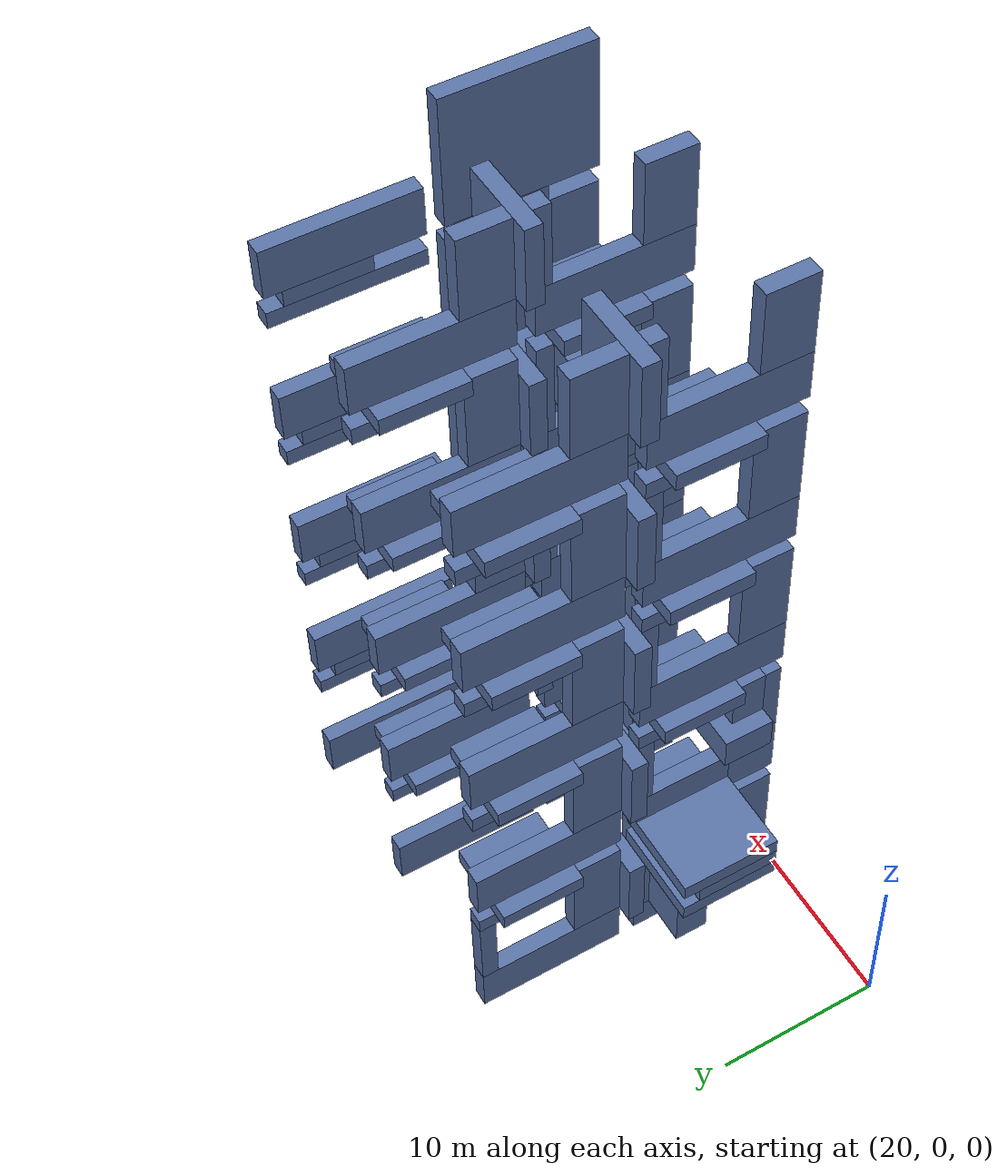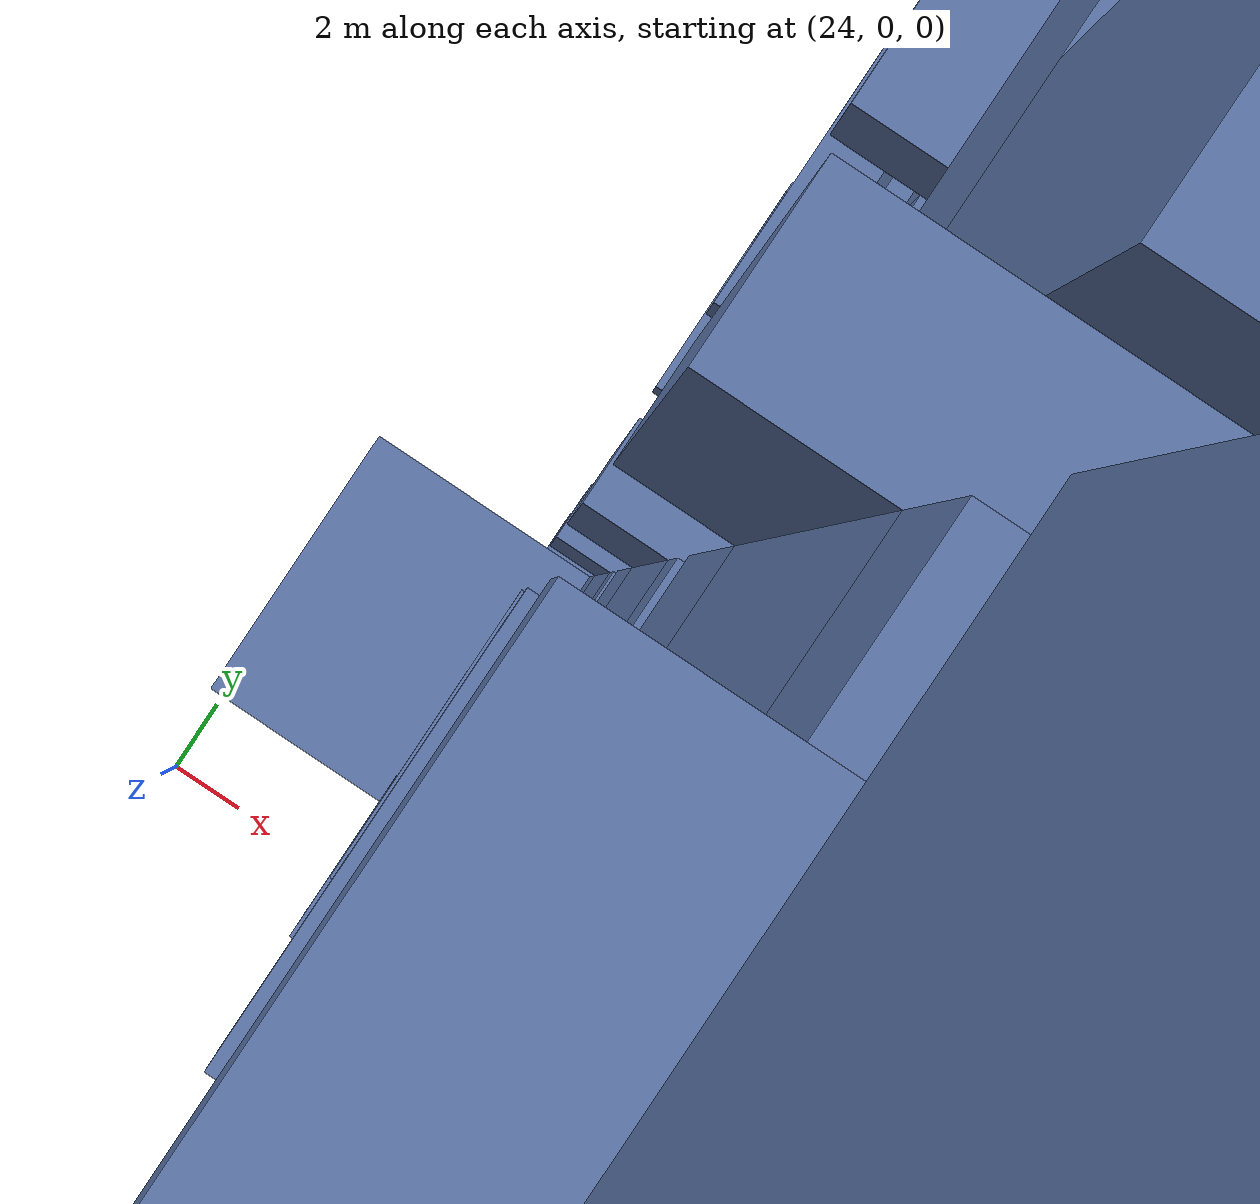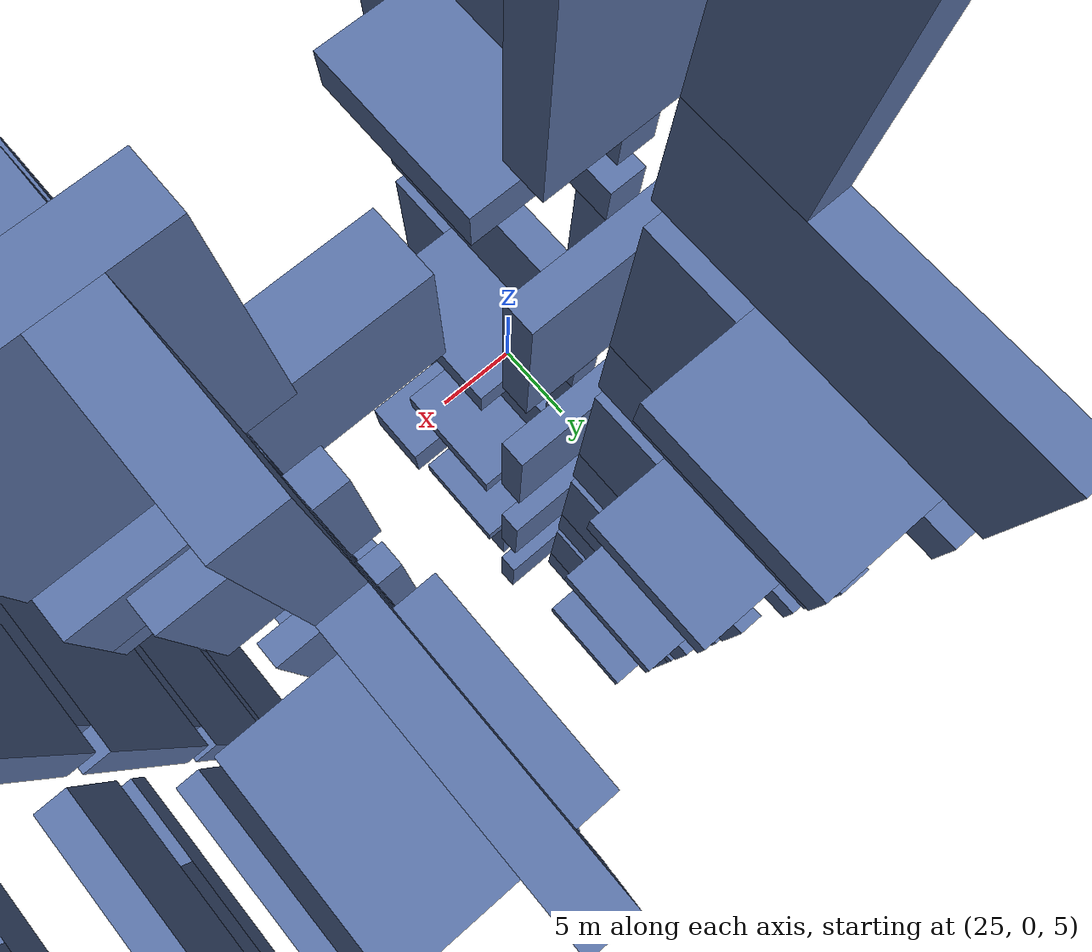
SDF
<sdf version="1.7">
 <world name="default">
  <model name="racer_env">
   <static>1</static>
   <link name="b386">
    <pose>28.000 7.000 9.500 0 0 0</pose>
    <collision name="c"><geometry><box><size>6.000 6.000 1.000</size></box></geometry></collision>
    <visual name="v">
     <geometry><box><size>6.000 6.000 1.000</size></box></geometry>
     <material><ambient>0.30 0.38 0.55 1</ambient><diffuse>0.35 0.45 0.65 1</diffuse></material>
    </visual>
   </link>
   <link name="b387">
    <pose>29.500 6.500 10.500 0 0 0</pose>
    <collision name="c"><geometry><box><size>9.000 5.000 1.000</size></box></geometry></collision>
    <visual name="v">
     <geometry><box><size>9.000 5.000 1.000</size></box></geometry>
     <material><ambient>0.30 0.38 0.55 1</ambient><diffuse>0.35 0.45 0.65 1</diffuse></material>
    </visual>
   </link>
   <link name="b388">
    <pose>28.000 7.000 11.500 0 0 0</pose>
    <collision name="c"><geometry><box><size>6.000 6.000 1.000</size></box></geometry></collision>
    <visual name="v">
     <geometry><box><size>6.000 6.000 1.000</size></box></geometry>
     <material><ambient>0.30 0.38 0.55 1</ambient><diffuse>0.35 0.45 0.65 1</diffuse></material>
    </visual>
   </link>
   <link name="b389">
    <pose>30.000 8.000 6.000 0 0 0</pose>
    <collision name="c"><geometry><box><size>6.000 2.000 6.000</size></box></geometry></collision>
    <visual name="v">
     <geometry><box><size>6.000 2.000 6.000</size></box></geometry>
     <material><ambient>0.30 0.38 0.55 1</ambient><diffuse>0.35 0.45 0.65 1</diffuse></material>
    </visual>
   </link>
   <link name="b392">
    <pose>32.000 3.500 16.000 0 0 0</pose>
    <collision name="c"><geometry><box><size>6.000 3.000 2.000</size></box></geometry></collision>
    <visual name="v">
     <geometry><box><size>6.000 3.000 2.000</size></box></geometry>
     <material><ambient>0.30 0.38 0.55 1</ambient><diffuse>0.35 0.45 0.65 1</diffuse></material>
    </visual>
   </link>
   <link name="b393">
    <pose>31.500 6.500 20.500 0 0 0</pose>
    <collision name="c"><geometry><box><size>5.000 5.000 1.000</size></box></geometry></collision>
    <visual name="v">
     <geometry><box><size>5.000 5.000 1.000</size></box></geometry>
     <material><ambient>0.30 0.38 0.55 1</ambient><diffuse>0.35 0.45 0.65 1</diffuse></material>
    </visual>
   </link>
   <link name="b394">
    <pose>31.500 6.500 30.500 0 0 0</pose>
    <collision name="c"><geometry><box><size>5.000 5.000 1.000</size></box></geometry></collision>
    <visual name="v">
     <geometry><box><size>5.000 5.000 1.000</size></box></geometry>
     <material><ambient>0.30 0.38 0.55 1</ambient><diffuse>0.35 0.45 0.65 1</diffuse></material>
    </visual>
   </link>
   <link name="b395">
    <pose>31.500 6.500 40.500 0 0 0</pose>
    <collision name="c"><geometry><box><size>5.000 5.000 1.000</size></box></geometry></collision>
    <visual name="v">
     <geometry><box><size>5.000 5.000 1.000</size></box></geometry>
     <material><ambient>0.30 0.38 0.55 1</ambient><diffuse>0.35 0.45 0.65 1</diffuse></material>
    </visual>
   </link>
   <link name="b396">
    <pose>31.500 10.500 6.500 0 0 0</pose>
    <collision name="c"><geometry><box><size>5.000 1.000 5.000</size></box></geometry></collision>
    <visual name="v">
     <geometry><box><size>5.000 1.000 5.000</size></box></geometry>
     <material><ambient>0.30 0.38 0.55 1</ambient><diffuse>0.35 0.45 0.65 1</diffuse></material>
    </visual>
   </link>
   <link name="b397">
    <pose>31.500 10.500 16.500 0 0 0</pose>
    <collision name="c"><geometry><box><size>5.000 1.000 5.000</size></box></geometry></collision>
    <visual name="v">
     <geometry><box><size>5.000 1.000 5.000</size></box></geometry>
     <material><ambient>0.30 0.38 0.55 1</ambient><diffuse>0.35 0.45 0.65 1</diffuse></material>
    </visual>
   </link>
   <link name="b398">
    <pose>31.500 10.500 26.500 0 0 0</pose>
    <collision name="c"><geometry><box><size>5.000 1.000 5.000</size></box></geometry></collision>
    <visual name="v">
     <geometry><box><size>5.000 1.000 5.000</size></box></geometry>
     <material><ambient>0.30 0.38 0.55 1</ambient><diffuse>0.35 0.45 0.65 1</diffuse></material>
    </visual>
   </link>
   <link name="b399">
    <pose>31.500 10.500 36.500 0 0 0</pose>
    <collision name="c"><geometry><box><size>5.000 1.000 5.000</size></box></geometry></collision>
    <visual name="v">
     <geometry><box><size>5.000 1.000 5.000</size></box></geometry>
     <material><ambient>0.30 0.38 0.55 1</ambient><diffuse>0.35 0.45 0.65 1</diffuse></material>
    </visual>
   </link>
   <link name="b400">
    <pose>31.500 10.500 46.500 0 0 0</pose>
    <collision name="c"><geometry><box><size>5.000 1.000 5.000</size></box></geometry></collision>
    <visual name="v">
     <geometry><box><size>5.000 1.000 5.000</size></box></geometry>
     <material><ambient>0.30 0.38 0.55 1</ambient><diffuse>0.35 0.45 0.65 1</diffuse></material>
    </visual>
   </link>
   <link name="b401">
    <pose>31.500 16.500 10.500 0 0 0</pose>
    <collision name="c"><geometry><box><size>5.000 5.000 1.000</size></box></geometry></collision>
    <visual name="v">
     <geometry><box><size>5.000 5.000 1.000</size></box></geometry>
     <material><ambient>0.30 0.38 0.55 1</ambient><diffuse>0.35 0.45 0.65 1</diffuse></material>
    </visual>
   </link>
   <link name="b402">
    <pose>31.500 16.500 20.500 0 0 0</pose>
    <collision name="c"><geometry><box><size>5.000 5.000 1.000</size></box></geometry></collision>
    <visual name="v">
     <geometry><box><size>5.000 5.000 1.000</size></box></geometry>
     <material><ambient>0.30 0.38 0.55 1</ambient><diffuse>0.35 0.45 0.65 1</diffuse></material>
    </visual>
   </link>
   <link name="b403">
    <pose>31.500 16.500 30.500 0 0 0</pose>
    <collision name="c"><geometry><box><size>5.000 5.000 1.000</size></box></geometry></collision>
    <visual name="v">
     <geometry><box><size>5.000 5.000 1.000</size></box></geometry>
     <material><ambient>0.30 0.38 0.55 1</ambient><diffuse>0.35 0.45 0.65 1</diffuse></material>
    </visual>
   </link>
   <link name="b404">
    <pose>31.500 16.500 40.500 0 0 0</pose>
    <collision name="c"><geometry><box><size>5.000 5.000 1.000</size></box></geometry></collision>
    <visual name="v">
     <geometry><box><size>5.000 5.000 1.000</size></box></geometry>
     <material><ambient>0.30 0.38 0.55 1</ambient><diffuse>0.35 0.45 0.65 1</diffuse></material>
    </visual>
   </link>
   <link name="b432">
    <pose>30.500 5.500 2.000 0 0 0</pose>
    <collision name="c"><geometry><box><size>1.000 9.000 2.000</size></box></geometry></collision>
    <visual name="v">
     <geometry><box><size>1.000 9.000 2.000</size></box></geometry>
     <material><ambient>0.30 0.38 0.55 1</ambient><diffuse>0.35 0.45 0.65 1</diffuse></material>
    </visual>
   </link>
   <link name="b433">
    <pose>30.500 4.000 3.500 0 0 0</pose>
    <collision name="c"><geometry><box><size>1.000 6.000 1.000</size></box></geometry></collision>
    <visual name="v">
     <geometry><box><size>1.000 6.000 1.000</size></box></geometry>
     <material><ambient>0.30 0.38 0.55 1</ambient><diffuse>0.35 0.45 0.65 1</diffuse></material>
    </visual>
   </link>
   <link name="b434">
    <pose>30.500 2.500 7.000 0 0 0</pose>
    <collision name="c"><geometry><box><size>1.000 3.000 6.000</size></box></geometry></collision>
    <visual name="v">
     <geometry><box><size>1.000 3.000 6.000</size></box></geometry>
     <material><ambient>0.30 0.38 0.55 1</ambient><diffuse>0.35 0.45 0.65 1</diffuse></material>
    </visual>
   </link>
   <link name="b435">
    <pose>30.500 2.500 13.000 0 0 0</pose>
    <collision name="c"><geometry><box><size>1.000 3.000 4.000</size></box></geometry></collision>
    <visual name="v">
     <geometry><box><size>1.000 3.000 4.000</size></box></geometry>
     <material><ambient>0.30 0.38 0.55 1</ambient><diffuse>0.35 0.45 0.65 1</diffuse></material>
    </visual>
   </link>
   <link name="b436">
    <pose>30.500 1.500 17.500 0 0 0</pose>
    <collision name="c"><geometry><box><size>1.000 1.000 5.000</size></box></geometry></collision>
    <visual name="v">
     <geometry><box><size>1.000 1.000 5.000</size></box></geometry>
     <material><ambient>0.30 0.38 0.55 1</ambient><diffuse>0.35 0.45 0.65 1</diffuse></material>
    </visual>
   </link>
   <link name="b437">
    <pose>30.500 5.500 22.500 0 0 0</pose>
    <collision name="c"><geometry><box><size>1.000 9.000 3.000</size></box></geometry></collision>
    <visual name="v">
     <geometry><box><size>1.000 9.000 3.000</size></box></geometry>
     <material><ambient>0.30 0.38 0.55 1</ambient><diffuse>0.35 0.45 0.65 1</diffuse></material>
    </visual>
   </link>
   <link name="b438">
    <pose>30.500 2.500 27.000 0 0 0</pose>
    <collision name="c"><geometry><box><size>1.000 3.000 6.000</size></box></geometry></collision>
    <visual name="v">
     <geometry><box><size>1.000 3.000 6.000</size></box></geometry>
     <material><ambient>0.30 0.38 0.55 1</ambient><diffuse>0.35 0.45 0.65 1</diffuse></material>
    </visual>
   </link>
   <link name="b439">
    <pose>30.500 5.500 32.500 0 0 0</pose>
    <collision name="c"><geometry><box><size>1.000 9.000 3.000</size></box></geometry></collision>
    <visual name="v">
     <geometry><box><size>1.000 9.000 3.000</size></box></geometry>
     <material><ambient>0.30 0.38 0.55 1</ambient><diffuse>0.35 0.45 0.65 1</diffuse></material>
    </visual>
   </link>
   <link name="b440">
    <pose>30.500 2.500 37.000 0 0 0</pose>
    <collision name="c"><geometry><box><size>1.000 3.000 6.000</size></box></geometry></collision>
    <visual name="v">
     <geometry><box><size>1.000 3.000 6.000</size></box></geometry>
     <material><ambient>0.30 0.38 0.55 1</ambient><diffuse>0.35 0.45 0.65 1</diffuse></material>
    </visual>
   </link>
   <link name="b441">
    <pose>30.500 5.500 42.500 0 0 0</pose>
    <collision name="c"><geometry><box><size>1.000 9.000 3.000</size></box></geometry></collision>
    <visual name="v">
     <geometry><box><size>1.000 9.000 3.000</size></box></geometry>
     <material><ambient>0.30 0.38 0.55 1</ambient><diffuse>0.35 0.45 0.65 1</diffuse></material>
    </visual>
   </link>
   <link name="b442">
    <pose>30.500 2.500 46.500 0 0 0</pose>
    <collision name="c"><geometry><box><size>1.000 3.000 5.000</size></box></geometry></collision>
    <visual name="v">
     <geometry><box><size>1.000 3.000 5.000</size></box></geometry>
     <material><ambient>0.30 0.38 0.55 1</ambient><diffuse>0.35 0.45 0.65 1</diffuse></material>
    </visual>
   </link>
   <link name="b443">
    <pose>30.500 3.000 18.500 0 0 0</pose>
    <collision name="c"><geometry><box><size>1.000 2.000 3.000</size></box></geometry></collision>
    <visual name="v">
     <geometry><box><size>1.000 2.000 3.000</size></box></geometry>
     <material><ambient>0.30 0.38 0.55 1</ambient><diffuse>0.35 0.45 0.65 1</diffuse></material>
    </visual>
   </link>
   <link name="b444">
    <pose>30.500 7.000 13.000 0 0 0</pose>
    <collision name="c"><geometry><box><size>1.000 6.000 2.000</size></box></geometry></collision>
    <visual name="v">
     <geometry><box><size>1.000 6.000 2.000</size></box></geometry>
     <material><ambient>0.30 0.38 0.55 1</ambient><diffuse>0.35 0.45 0.65 1</diffuse></material>
    </visual>
   </link>
   <link name="b445">
    <pose>30.500 7.000 19.500 0 0 0</pose>
    <collision name="c"><geometry><box><size>1.000 6.000 1.000</size></box></geometry></collision>
    <visual name="v">
     <geometry><box><size>1.000 6.000 1.000</size></box></geometry>
     <material><ambient>0.30 0.38 0.55 1</ambient><diffuse>0.35 0.45 0.65 1</diffuse></material>
    </visual>
   </link>
   <link name="b446">
    <pose>30.500 7.000 29.500 0 0 0</pose>
    <collision name="c"><geometry><box><size>1.000 6.000 1.000</size></box></geometry></collision>
    <visual name="v">
     <geometry><box><size>1.000 6.000 1.000</size></box></geometry>
     <material><ambient>0.30 0.38 0.55 1</ambient><diffuse>0.35 0.45 0.65 1</diffuse></material>
    </visual>
   </link>
   <link name="b447">
    <pose>30.500 7.000 39.500 0 0 0</pose>
    <collision name="c"><geometry><box><size>1.000 6.000 1.000</size></box></geometry></collision>
    <visual name="v">
     <geometry><box><size>1.000 6.000 1.000</size></box></geometry>
     <material><ambient>0.30 0.38 0.55 1</ambient><diffuse>0.35 0.45 0.65 1</diffuse></material>
    </visual>
   </link>
   <link name="b448">
    <pose>30.500 9.500 6.000 0 0 0</pose>
    <collision name="c"><geometry><box><size>1.000 1.000 6.000</size></box></geometry></collision>
    <visual name="v">
     <geometry><box><size>1.000 1.000 6.000</size></box></geometry>
     <material><ambient>0.30 0.38 0.55 1</ambient><diffuse>0.35 0.45 0.65 1</diffuse></material>
    </visual>
   </link>
   <link name="b449">
    <pose>30.500 9.500 16.500 0 0 0</pose>
    <collision name="c"><geometry><box><size>1.000 1.000 5.000</size></box></geometry></collision>
    <visual name="v">
     <geometry><box><size>1.000 1.000 5.000</size></box></geometry>
     <material><ambient>0.30 0.38 0.55 1</ambient><diffuse>0.35 0.45 0.65 1</diffuse></material>
    </visual>
   </link>
   <link name="b450">
    <pose>30.500 9.500 26.500 0 0 0</pose>
    <collision name="c"><geometry><box><size>1.000 1.000 5.000</size></box></geometry></collision>
    <visual name="v">
     <geometry><box><size>1.000 1.000 5.000</size></box></geometry>
     <material><ambient>0.30 0.38 0.55 1</ambient><diffuse>0.35 0.45 0.65 1</diffuse></material>
    </visual>
   </link>
   <link name="b451">
    <pose>30.500 9.500 36.500 0 0 0</pose>
    <collision name="c"><geometry><box><size>1.000 1.000 5.000</size></box></geometry></collision>
    <visual name="v">
     <geometry><box><size>1.000 1.000 5.000</size></box></geometry>
     <material><ambient>0.30 0.38 0.55 1</ambient><diffuse>0.35 0.45 0.65 1</diffuse></material>
    </visual>
   </link>
   <link name="b452">
    <pose>30.500 9.500 46.500 0 0 0</pose>
    <collision name="c"><geometry><box><size>1.000 1.000 5.000</size></box></geometry></collision>
    <visual name="v">
     <geometry><box><size>1.000 1.000 5.000</size></box></geometry>
     <material><ambient>0.30 0.38 0.55 1</ambient><diffuse>0.35 0.45 0.65 1</diffuse></material>
    </visual>
   </link>
   <link name="b453">
    <pose>30.500 15.500 2.500 0 0 0</pose>
    <collision name="c"><geometry><box><size>1.000 9.000 3.000</size></box></geometry></collision>
    <visual name="v">
     <geometry><box><size>1.000 9.000 3.000</size></box></geometry>
     <material><ambient>0.30 0.38 0.55 1</ambient><diffuse>0.35 0.45 0.65 1</diffuse></material>
    </visual>
   </link>
   <link name="b454">
    <pose>30.500 12.500 7.000 0 0 0</pose>
    <collision name="c"><geometry><box><size>1.000 3.000 6.000</size></box></geometry></collision>
    <visual name="v">
     <geometry><box><size>1.000 3.000 6.000</size></box></geometry>
     <material><ambient>0.30 0.38 0.55 1</ambient><diffuse>0.35 0.45 0.65 1</diffuse></material>
    </visual>
   </link>
   <link name="b455">
    <pose>30.500 15.500 12.500 0 0 0</pose>
    <collision name="c"><geometry><box><size>1.000 9.000 3.000</size></box></geometry></collision>
    <visual name="v">
     <geometry><box><size>1.000 9.000 3.000</size></box></geometry>
     <material><ambient>0.30 0.38 0.55 1</ambient><diffuse>0.35 0.45 0.65 1</diffuse></material>
    </visual>
   </link>
   <link name="b456">
    <pose>30.500 12.500 17.000 0 0 0</pose>
    <collision name="c"><geometry><box><size>1.000 3.000 6.000</size></box></geometry></collision>
    <visual name="v">
     <geometry><box><size>1.000 3.000 6.000</size></box></geometry>
     <material><ambient>0.30 0.38 0.55 1</ambient><diffuse>0.35 0.45 0.65 1</diffuse></material>
    </visual>
   </link>
   <link name="b457">
    <pose>30.500 15.500 22.500 0 0 0</pose>
    <collision name="c"><geometry><box><size>1.000 9.000 3.000</size></box></geometry></collision>
    <visual name="v">
     <geometry><box><size>1.000 9.000 3.000</size></box></geometry>
     <material><ambient>0.30 0.38 0.55 1</ambient><diffuse>0.35 0.45 0.65 1</diffuse></material>
    </visual>
   </link>
   <link name="b458">
    <pose>30.500 12.500 27.000 0 0 0</pose>
    <collision name="c"><geometry><box><size>1.000 3.000 6.000</size></box></geometry></collision>
    <visual name="v">
     <geometry><box><size>1.000 3.000 6.000</size></box></geometry>
     <material><ambient>0.30 0.38 0.55 1</ambient><diffuse>0.35 0.45 0.65 1</diffuse></material>
    </visual>
   </link>
   <link name="b459">
    <pose>30.500 15.500 32.500 0 0 0</pose>
    <collision name="c"><geometry><box><size>1.000 9.000 3.000</size></box></geometry></collision>
    <visual name="v">
     <geometry><box><size>1.000 9.000 3.000</size></box></geometry>
     <material><ambient>0.30 0.38 0.55 1</ambient><diffuse>0.35 0.45 0.65 1</diffuse></material>
    </visual>
   </link>
   <link name="b460">
    <pose>30.500 12.500 37.000 0 0 0</pose>
    <collision name="c"><geometry><box><size>1.000 3.000 6.000</size></box></geometry></collision>
    <visual name="v">
     <geometry><box><size>1.000 3.000 6.000</size></box></geometry>
     <material><ambient>0.30 0.38 0.55 1</ambient><diffuse>0.35 0.45 0.65 1</diffuse></material>
    </visual>
   </link>
   <link name="b461">
    <pose>30.500 15.500 42.500 0 0 0</pose>
    <collision name="c"><geometry><box><size>1.000 9.000 3.000</size></box></geometry></collision>
    <visual name="v">
     <geometry><box><size>1.000 9.000 3.000</size></box></geometry>
     <material><ambient>0.30 0.38 0.55 1</ambient><diffuse>0.35 0.45 0.65 1</diffuse></material>
    </visual>
   </link>
   <link name="b462">
    <pose>30.500 12.500 46.500 0 0 0</pose>
    <collision name="c"><geometry><box><size>1.000 3.000 5.000</size></box></geometry></collision>
    <visual name="v">
     <geometry><box><size>1.000 3.000 5.000</size></box></geometry>
     <material><ambient>0.30 0.38 0.55 1</ambient><diffuse>0.35 0.45 0.65 1</diffuse></material>
    </visual>
   </link>
   <link name="b463">
    <pose>30.500 17.000 9.500 0 0 0</pose>
    <collision name="c"><geometry><box><size>1.000 6.000 1.000</size></box></geometry></collision>
    <visual name="v">
     <geometry><box><size>1.000 6.000 1.000</size></box></geometry>
     <material><ambient>0.30 0.38 0.55 1</ambient><diffuse>0.35 0.45 0.65 1</diffuse></material>
    </visual>
   </link>
   <link name="b464">
    <pose>30.500 17.000 19.500 0 0 0</pose>
    <collision name="c"><geometry><box><size>1.000 6.000 1.000</size></box></geometry></collision>
    <visual name="v">
     <geometry><box><size>1.000 6.000 1.000</size></box></geometry>
     <material><ambient>0.30 0.38 0.55 1</ambient><diffuse>0.35 0.45 0.65 1</diffuse></material>
    </visual>
   </link>
   <link name="b465">
    <pose>30.500 17.000 29.500 0 0 0</pose>
    <collision name="c"><geometry><box><size>1.000 6.000 1.000</size></box></geometry></collision>
    <visual name="v">
     <geometry><box><size>1.000 6.000 1.000</size></box></geometry>
     <material><ambient>0.30 0.38 0.55 1</ambient><diffuse>0.35 0.45 0.65 1</diffuse></material>
    </visual>
   </link>
   <link name="b466">
    <pose>30.500 17.000 39.500 0 0 0</pose>
    <collision name="c"><geometry><box><size>1.000 6.000 1.000</size></box></geometry></collision>
    <visual name="v">
     <geometry><box><size>1.000 6.000 1.000</size></box></geometry>
     <material><ambient>0.30 0.38 0.55 1</ambient><diffuse>0.35 0.45 0.65 1</diffuse></material>
    </visual>
   </link>
   <link name="b467">
    <pose>30.500 19.500 6.500 0 0 0</pose>
    <collision name="c"><geometry><box><size>1.000 1.000 5.000</size></box></geometry></collision>
    <visual name="v">
     <geometry><box><size>1.000 1.000 5.000</size></box></geometry>
     <material><ambient>0.30 0.38 0.55 1</ambient><diffuse>0.35 0.45 0.65 1</diffuse></material>
    </visual>
   </link>
   <link name="b528">
    <pose>38.000 8.000 38.000 0 0 0</pose>
    <collision name="c"><geometry><box><size>6.000 2.000 4.000</size></box></geometry></collision>
    <visual name="v">
     <geometry><box><size>6.000 2.000 4.000</size></box></geometry>
     <material><ambient>0.30 0.38 0.55 1</ambient><diffuse>0.35 0.45 0.65 1</diffuse></material>
    </visual>
   </link>
   <link name="b534">
    <pose>41.500 6.500 10.500 0 0 0</pose>
    <collision name="c"><geometry><box><size>5.000 5.000 1.000</size></box></geometry></collision>
    <visual name="v">
     <geometry><box><size>5.000 5.000 1.000</size></box></geometry>
     <material><ambient>0.30 0.38 0.55 1</ambient><diffuse>0.35 0.45 0.65 1</diffuse></material>
    </visual>
   </link>
   <link name="b535">
    <pose>41.500 6.500 20.500 0 0 0</pose>
    <collision name="c"><geometry><box><size>5.000 5.000 1.000</size></box></geometry></collision>
    <visual name="v">
     <geometry><box><size>5.000 5.000 1.000</size></box></geometry>
     <material><ambient>0.30 0.38 0.55 1</ambient><diffuse>0.35 0.45 0.65 1</diffuse></material>
    </visual>
   </link>
   <link name="b536">
    <pose>41.500 6.500 30.500 0 0 0</pose>
    <collision name="c"><geometry><box><size>5.000 5.000 1.000</size></box></geometry></collision>
    <visual name="v">
     <geometry><box><size>5.000 5.000 1.000</size></box></geometry>
     <material><ambient>0.30 0.38 0.55 1</ambient><diffuse>0.35 0.45 0.65 1</diffuse></material>
    </visual>
   </link>
   <link name="b537">
    <pose>41.500 6.500 40.500 0 0 0</pose>
    <collision name="c"><geometry><box><size>5.000 5.000 1.000</size></box></geometry></collision>
    <visual name="v">
     <geometry><box><size>5.000 5.000 1.000</size></box></geometry>
     <material><ambient>0.30 0.38 0.55 1</ambient><diffuse>0.35 0.45 0.65 1</diffuse></material>
    </visual>
   </link>
   <link name="b538">
    <pose>41.500 10.500 6.500 0 0 0</pose>
    <collision name="c"><geometry><box><size>5.000 1.000 5.000</size></box></geometry></collision>
    <visual name="v">
     <geometry><box><size>5.000 1.000 5.000</size></box></geometry>
     <material><ambient>0.30 0.38 0.55 1</ambient><diffuse>0.35 0.45 0.65 1</diffuse></material>
    </visual>
   </link>
   <link name="b539">
    <pose>41.500 10.500 16.500 0 0 0</pose>
    <collision name="c"><geometry><box><size>5.000 1.000 5.000</size></box></geometry></collision>
    <visual name="v">
     <geometry><box><size>5.000 1.000 5.000</size></box></geometry>
     <material><ambient>0.30 0.38 0.55 1</ambient><diffuse>0.35 0.45 0.65 1</diffuse></material>
    </visual>
   </link>
   <link name="b540">
    <pose>41.500 10.500 26.500 0 0 0</pose>
    <collision name="c"><geometry><box><size>5.000 1.000 5.000</size></box></geometry></collision>
    <visual name="v">
     <geometry><box><size>5.000 1.000 5.000</size></box></geometry>
     <material><ambient>0.30 0.38 0.55 1</ambient><diffuse>0.35 0.45 0.65 1</diffuse></material>
    </visual>
   </link>
   <link name="b541">
    <pose>41.500 10.500 36.500 0 0 0</pose>
    <collision name="c"><geometry><box><size>5.000 1.000 5.000</size></box></geometry></collision>
    <visual name="v">
     <geometry><box><size>5.000 1.000 5.000</size></box></geometry>
     <material><ambient>0.30 0.38 0.55 1</ambient><diffuse>0.35 0.45 0.65 1</diffuse></material>
    </visual>
   </link>
   <link name="b542">
    <pose>41.500 10.500 46.500 0 0 0</pose>
    <collision name="c"><geometry><box><size>5.000 1.000 5.000</size></box></geometry></collision>
    <visual name="v">
     <geometry><box><size>5.000 1.000 5.000</size></box></geometry>
     <material><ambient>0.30 0.38 0.55 1</ambient><diffuse>0.35 0.45 0.65 1</diffuse></material>
    </visual>
   </link>
   <link name="b543">
    <pose>41.500 16.500 10.500 0 0 0</pose>
    <collision name="c"><geometry><box><size>5.000 5.000 1.000</size></box></geometry></collision>
    <visual name="v">
     <geometry><box><size>5.000 5.000 1.000</size></box></geometry>
     <material><ambient>0.30 0.38 0.55 1</ambient><diffuse>0.35 0.45 0.65 1</diffuse></material>
    </visual>
   </link>
   <link name="b544">
    <pose>41.500 16.500 20.500 0 0 0</pose>
    <collision name="c"><geometry><box><size>5.000 5.000 1.000</size></box></geometry></collision>
    <visual name="v">
     <geometry><box><size>5.000 5.000 1.000</size></box></geometry>
     <material><ambient>0.30 0.38 0.55 1</ambient><diffuse>0.35 0.45 0.65 1</diffuse></material>
    </visual>
   </link>
   <link name="b545">
    <pose>41.500 16.500 30.500 0 0 0</pose>
    <collision name="c"><geometry><box><size>5.000 5.000 1.000</size></box></geometry></collision>
    <visual name="v">
     <geometry><box><size>5.000 5.000 1.000</size></box></geometry>
     <material><ambient>0.30 0.38 0.55 1</ambient><diffuse>0.35 0.45 0.65 1</diffuse></material>
    </visual>
   </link>
   <link name="b546">
    <pose>41.500 16.500 40.500 0 0 0</pose>
    <collision name="c"><geometry><box><size>5.000 5.000 1.000</size></box></geometry></collision>
    <visual name="v">
     <geometry><box><size>5.000 5.000 1.000</size></box></geometry>
     <material><ambient>0.30 0.38 0.55 1</ambient><diffuse>0.35 0.45 0.65 1</diffuse></material>
    </visual>
   </link>
   <link name="b573">
    <pose>40.500 5.500 2.500 0 0 0</pose>
    <collision name="c"><geometry><box><size>1.000 9.000 3.000</size></box></geometry></collision>
    <visual name="v">
     <geometry><box><size>1.000 9.000 3.000</size></box></geometry>
     <material><ambient>0.30 0.38 0.55 1</ambient><diffuse>0.35 0.45 0.65 1</diffuse></material>
    </visual>
   </link>
   <link name="b574">
    <pose>40.500 2.500 7.000 0 0 0</pose>
    <collision name="c"><geometry><box><size>1.000 3.000 6.000</size></box></geometry></collision>
    <visual name="v">
     <geometry><box><size>1.000 3.000 6.000</size></box></geometry>
     <material><ambient>0.30 0.38 0.55 1</ambient><diffuse>0.35 0.45 0.65 1</diffuse></material>
    </visual>
   </link>
   <link name="b575">
    <pose>40.500 5.500 12.500 0 0 0</pose>
    <collision name="c"><geometry><box><size>1.000 9.000 3.000</size></box></geometry></collision>
    <visual name="v">
     <geometry><box><size>1.000 9.000 3.000</size></box></geometry>
     <material><ambient>0.30 0.38 0.55 1</ambient><diffuse>0.35 0.45 0.65 1</diffuse></material>
    </visual>
   </link>
   <link name="b576">
    <pose>40.500 2.500 17.000 0 0 0</pose>
    <collision name="c"><geometry><box><size>1.000 3.000 6.000</size></box></geometry></collision>
    <visual name="v">
     <geometry><box><size>1.000 3.000 6.000</size></box></geometry>
     <material><ambient>0.30 0.38 0.55 1</ambient><diffuse>0.35 0.45 0.65 1</diffuse></material>
    </visual>
   </link>
   <link name="b577">
    <pose>40.500 5.500 22.500 0 0 0</pose>
    <collision name="c"><geometry><box><size>1.000 9.000 3.000</size></box></geometry></collision>
    <visual name="v">
     <geometry><box><size>1.000 9.000 3.000</size></box></geometry>
     <material><ambient>0.30 0.38 0.55 1</ambient><diffuse>0.35 0.45 0.65 1</diffuse></material>
    </visual>
   </link>
   <link name="b578">
    <pose>40.500 2.500 27.000 0 0 0</pose>
    <collision name="c"><geometry><box><size>1.000 3.000 6.000</size></box></geometry></collision>
    <visual name="v">
     <geometry><box><size>1.000 3.000 6.000</size></box></geometry>
     <material><ambient>0.30 0.38 0.55 1</ambient><diffuse>0.35 0.45 0.65 1</diffuse></material>
    </visual>
   </link>
   <link name="b579">
    <pose>40.500 5.500 32.500 0 0 0</pose>
    <collision name="c"><geometry><box><size>1.000 9.000 3.000</size></box></geometry></collision>
    <visual name="v">
     <geometry><box><size>1.000 9.000 3.000</size></box></geometry>
     <material><ambient>0.30 0.38 0.55 1</ambient><diffuse>0.35 0.45 0.65 1</diffuse></material>
    </visual>
   </link>
   <link name="b580">
    <pose>40.500 2.500 37.000 0 0 0</pose>
    <collision name="c"><geometry><box><size>1.000 3.000 6.000</size></box></geometry></collision>
    <visual name="v">
     <geometry><box><size>1.000 3.000 6.000</size></box></geometry>
     <material><ambient>0.30 0.38 0.55 1</ambient><diffuse>0.35 0.45 0.65 1</diffuse></material>
    </visual>
   </link>
   <link name="b581">
    <pose>40.500 5.500 42.500 0 0 0</pose>
    <collision name="c"><geometry><box><size>1.000 9.000 3.000</size></box></geometry></collision>
    <visual name="v">
     <geometry><box><size>1.000 9.000 3.000</size></box></geometry>
     <material><ambient>0.30 0.38 0.55 1</ambient><diffuse>0.35 0.45 0.65 1</diffuse></material>
    </visual>
   </link>
   <link name="b582">
    <pose>40.500 2.500 46.500 0 0 0</pose>
    <collision name="c"><geometry><box><size>1.000 3.000 5.000</size></box></geometry></collision>
    <visual name="v">
     <geometry><box><size>1.000 3.000 5.000</size></box></geometry>
     <material><ambient>0.30 0.38 0.55 1</ambient><diffuse>0.35 0.45 0.65 1</diffuse></material>
    </visual>
   </link>
   <link name="b583">
    <pose>40.500 7.000 9.500 0 0 0</pose>
    <collision name="c"><geometry><box><size>1.000 6.000 1.000</size></box></geometry></collision>
    <visual name="v">
     <geometry><box><size>1.000 6.000 1.000</size></box></geometry>
     <material><ambient>0.30 0.38 0.55 1</ambient><diffuse>0.35 0.45 0.65 1</diffuse></material>
    </visual>
   </link>
   <link name="b584">
    <pose>40.500 7.000 19.500 0 0 0</pose>
    <collision name="c"><geometry><box><size>1.000 6.000 1.000</size></box></geometry></collision>
    <visual name="v">
     <geometry><box><size>1.000 6.000 1.000</size></box></geometry>
     <material><ambient>0.30 0.38 0.55 1</ambient><diffuse>0.35 0.45 0.65 1</diffuse></material>
    </visual>
   </link>
   <link name="b585">
    <pose>40.500 7.000 29.500 0 0 0</pose>
    <collision name="c"><geometry><box><size>1.000 6.000 1.000</size></box></geometry></collision>
    <visual name="v">
     <geometry><box><size>1.000 6.000 1.000</size></box></geometry>
     <material><ambient>0.30 0.38 0.55 1</ambient><diffuse>0.35 0.45 0.65 1</diffuse></material>
    </visual>
   </link>
   <link name="b586">
    <pose>40.500 5.500 39.500 0 0 0</pose>
    <collision name="c"><geometry><box><size>1.000 3.000 1.000</size></box></geometry></collision>
    <visual name="v">
     <geometry><box><size>1.000 3.000 1.000</size></box></geometry>
     <material><ambient>0.30 0.38 0.55 1</ambient><diffuse>0.35 0.45 0.65 1</diffuse></material>
    </visual>
   </link>
   <link name="b587">
    <pose>40.500 9.500 6.500 0 0 0</pose>
    <collision name="c"><geometry><box><size>1.000 1.000 5.000</size></box></geometry></collision>
    <visual name="v">
     <geometry><box><size>1.000 1.000 5.000</size></box></geometry>
     <material><ambient>0.30 0.38 0.55 1</ambient><diffuse>0.35 0.45 0.65 1</diffuse></material>
    </visual>
   </link>
   <link name="b588">
    <pose>40.500 9.500 16.500 0 0 0</pose>
    <collision name="c"><geometry><box><size>1.000 1.000 5.000</size></box></geometry></collision>
    <visual name="v">
     <geometry><box><size>1.000 1.000 5.000</size></box></geometry>
     <material><ambient>0.30 0.38 0.55 1</ambient><diffuse>0.35 0.45 0.65 1</diffuse></material>
    </visual>
   </link>
   <link name="b589">
    <pose>40.500 9.500 26.500 0 0 0</pose>
    <collision name="c"><geometry><box><size>1.000 1.000 5.000</size></box></geometry></collision>
    <visual name="v">
     <geometry><box><size>1.000 1.000 5.000</size></box></geometry>
     <material><ambient>0.30 0.38 0.55 1</ambient><diffuse>0.35 0.45 0.65 1</diffuse></material>
    </visual>
   </link>
   <link name="b590">
    <pose>40.500 9.500 37.000 0 0 0</pose>
    <collision name="c"><geometry><box><size>1.000 1.000 6.000</size></box></geometry></collision>
    <visual name="v">
     <geometry><box><size>1.000 1.000 6.000</size></box></geometry>
     <material><ambient>0.30 0.38 0.55 1</ambient><diffuse>0.35 0.45 0.65 1</diffuse></material>
    </visual>
   </link>
   <link name="b591">
    <pose>40.500 9.500 46.500 0 0 0</pose>
    <collision name="c"><geometry><box><size>1.000 1.000 5.000</size></box></geometry></collision>
    <visual name="v">
     <geometry><box><size>1.000 1.000 5.000</size></box></geometry>
     <material><ambient>0.30 0.38 0.55 1</ambient><diffuse>0.35 0.45 0.65 1</diffuse></material>
    </visual>
   </link>
   <link name="b592">
    <pose>40.500 15.500 2.500 0 0 0</pose>
    <collision name="c"><geometry><box><size>1.000 9.000 3.000</size></box></geometry></collision>
    <visual name="v">
     <geometry><box><size>1.000 9.000 3.000</size></box></geometry>
     <material><ambient>0.30 0.38 0.55 1</ambient><diffuse>0.35 0.45 0.65 1</diffuse></material>
    </visual>
   </link>
   <link name="b593">
    <pose>40.500 12.500 7.000 0 0 0</pose>
    <collision name="c"><geometry><box><size>1.000 3.000 6.000</size></box></geometry></collision>
    <visual name="v">
     <geometry><box><size>1.000 3.000 6.000</size></box></geometry>
     <material><ambient>0.30 0.38 0.55 1</ambient><diffuse>0.35 0.45 0.65 1</diffuse></material>
    </visual>
   </link>
   <link name="b594">
    <pose>40.500 15.500 12.500 0 0 0</pose>
    <collision name="c"><geometry><box><size>1.000 9.000 3.000</size></box></geometry></collision>
    <visual name="v">
     <geometry><box><size>1.000 9.000 3.000</size></box></geometry>
     <material><ambient>0.30 0.38 0.55 1</ambient><diffuse>0.35 0.45 0.65 1</diffuse></material>
    </visual>
   </link>
   <link name="b595">
    <pose>40.500 12.500 17.000 0 0 0</pose>
    <collision name="c"><geometry><box><size>1.000 3.000 6.000</size></box></geometry></collision>
    <visual name="v">
     <geometry><box><size>1.000 3.000 6.000</size></box></geometry>
     <material><ambient>0.30 0.38 0.55 1</ambient><diffuse>0.35 0.45 0.65 1</diffuse></material>
    </visual>
   </link>
   <link name="b596">
    <pose>40.500 15.500 22.500 0 0 0</pose>
    <collision name="c"><geometry><box><size>1.000 9.000 3.000</size></box></geometry></collision>
    <visual name="v">
     <geometry><box><size>1.000 9.000 3.000</size></box></geometry>
     <material><ambient>0.30 0.38 0.55 1</ambient><diffuse>0.35 0.45 0.65 1</diffuse></material>
    </visual>
   </link>
   <link name="b597">
    <pose>40.500 12.500 27.000 0 0 0</pose>
    <collision name="c"><geometry><box><size>1.000 3.000 6.000</size></box></geometry></collision>
    <visual name="v">
     <geometry><box><size>1.000 3.000 6.000</size></box></geometry>
     <material><ambient>0.30 0.38 0.55 1</ambient><diffuse>0.35 0.45 0.65 1</diffuse></material>
    </visual>
   </link>
   <link name="b598">
    <pose>40.500 15.500 32.500 0 0 0</pose>
    <collision name="c"><geometry><box><size>1.000 9.000 3.000</size></box></geometry></collision>
    <visual name="v">
     <geometry><box><size>1.000 9.000 3.000</size></box></geometry>
     <material><ambient>0.30 0.38 0.55 1</ambient><diffuse>0.35 0.45 0.65 1</diffuse></material>
    </visual>
   </link>
   <link name="b599">
    <pose>40.500 12.500 37.000 0 0 0</pose>
    <collision name="c"><geometry><box><size>1.000 3.000 6.000</size></box></geometry></collision>
    <visual name="v">
     <geometry><box><size>1.000 3.000 6.000</size></box></geometry>
     <material><ambient>0.30 0.38 0.55 1</ambient><diffuse>0.35 0.45 0.65 1</diffuse></material>
    </visual>
   </link>
   <link name="b600">
    <pose>40.500 15.500 42.500 0 0 0</pose>
    <collision name="c"><geometry><box><size>1.000 9.000 3.000</size></box></geometry></collision>
    <visual name="v">
     <geometry><box><size>1.000 9.000 3.000</size></box></geometry>
     <material><ambient>0.30 0.38 0.55 1</ambient><diffuse>0.35 0.45 0.65 1</diffuse></material>
    </visual>
   </link>
   <link name="b601">
    <pose>40.500 12.500 46.500 0 0 0</pose>
    <collision name="c"><geometry><box><size>1.000 3.000 5.000</size></box></geometry></collision>
    <visual name="v">
     <geometry><box><size>1.000 3.000 5.000</size></box></geometry>
     <material><ambient>0.30 0.38 0.55 1</ambient><diffuse>0.35 0.45 0.65 1</diffuse></material>
    </visual>
   </link>
   <link name="b602">
    <pose>40.500 17.000 9.500 0 0 0</pose>
    <collision name="c"><geometry><box><size>1.000 6.000 1.000</size></box></geometry></collision>
    <visual name="v">
     <geometry><box><size>1.000 6.000 1.000</size></box></geometry>
     <material><ambient>0.30 0.38 0.55 1</ambient><diffuse>0.35 0.45 0.65 1</diffuse></material>
    </visual>
   </link>
   <link name="b603">
    <pose>40.500 17.000 19.500 0 0 0</pose>
    <collision name="c"><geometry><box><size>1.000 6.000 1.000</size></box></geometry></collision>
    <visual name="v">
     <geometry><box><size>1.000 6.000 1.000</size></box></geometry>
     <material><ambient>0.30 0.38 0.55 1</ambient><diffuse>0.35 0.45 0.65 1</diffuse></material>
    </visual>
   </link>
   <link name="b604">
    <pose>40.500 17.000 29.500 0 0 0</pose>
    <collision name="c"><geometry><box><size>1.000 6.000 1.000</size></box></geometry></collision>
    <visual name="v">
     <geometry><box><size>1.000 6.000 1.000</size></box></geometry>
     <material><ambient>0.30 0.38 0.55 1</ambient><diffuse>0.35 0.45 0.65 1</diffuse></material>
    </visual>
   </link>
   <link name="b605">
    <pose>40.500 17.000 39.500 0 0 0</pose>
    <collision name="c"><geometry><box><size>1.000 6.000 1.000</size></box></geometry></collision>
    <visual name="v">
     <geometry><box><size>1.000 6.000 1.000</size></box></geometry>
     <material><ambient>0.30 0.38 0.55 1</ambient><diffuse>0.35 0.45 0.65 1</diffuse></material>
    </visual>
   </link>
   <link name="b665">
    <pose>44.000 7.000 32.500 0 0 0</pose>
    <collision name="c"><geometry><box><size>6.000 2.000 3.000</size></box></geometry></collision>
    <visual name="v">
     <geometry><box><size>6.000 2.000 3.000</size></box></geometry>
     <material><ambient>0.30 0.38 0.55 1</ambient><diffuse>0.35 0.45 0.65 1</diffuse></material>
    </visual>
   </link>
   <link name="b670">
    <pose>45.500 7.000 30.500 0 0 0</pose>
    <collision name="c"><geometry><box><size>3.000 2.000 1.000</size></box></geometry></collision>
    <visual name="v">
     <geometry><box><size>3.000 2.000 1.000</size></box></geometry>
     <material><ambient>0.30 0.38 0.55 1</ambient><diffuse>0.35 0.45 0.65 1</diffuse></material>
    </visual>
   </link>
   <link name="b676">
    <pose>49.500 5.500 5.500 0 0 0</pose>
    <collision name="c"><geometry><box><size>1.000 9.000 9.000</size></box></geometry></collision>
    <visual name="v">
     <geometry><box><size>1.000 9.000 9.000</size></box></geometry>
     <material><ambient>0.30 0.38 0.55 1</ambient><diffuse>0.35 0.45 0.65 1</diffuse></material>
    </visual>
   </link>
   <link name="b677">
    <pose>49.500 5.500 15.500 0 0 0</pose>
    <collision name="c"><geometry><box><size>1.000 9.000 9.000</size></box></geometry></collision>
    <visual name="v">
     <geometry><box><size>1.000 9.000 9.000</size></box></geometry>
     <material><ambient>0.30 0.38 0.55 1</ambient><diffuse>0.35 0.45 0.65 1</diffuse></material>
    </visual>
   </link>
   <link name="b678">
    <pose>49.500 5.500 25.500 0 0 0</pose>
    <collision name="c"><geometry><box><size>1.000 9.000 9.000</size></box></geometry></collision>
    <visual name="v">
     <geometry><box><size>1.000 9.000 9.000</size></box></geometry>
     <material><ambient>0.30 0.38 0.55 1</ambient><diffuse>0.35 0.45 0.65 1</diffuse></material>
    </visual>
   </link>
   <link name="b679">
    <pose>49.500 5.500 35.500 0 0 0</pose>
    <collision name="c"><geometry><box><size>1.000 9.000 9.000</size></box></geometry></collision>
    <visual name="v">
     <geometry><box><size>1.000 9.000 9.000</size></box></geometry>
     <material><ambient>0.30 0.38 0.55 1</ambient><diffuse>0.35 0.45 0.65 1</diffuse></material>
    </visual>
   </link>
   <link name="b680">
    <pose>49.500 5.500 45.000 0 0 0</pose>
    <collision name="c"><geometry><box><size>1.000 9.000 8.000</size></box></geometry></collision>
    <visual name="v">
     <geometry><box><size>1.000 9.000 8.000</size></box></geometry>
     <material><ambient>0.30 0.38 0.55 1</ambient><diffuse>0.35 0.45 0.65 1</diffuse></material>
    </visual>
   </link>
   <link name="b681">
    <pose>49.500 6.500 10.500 0 0 0</pose>
    <collision name="c"><geometry><box><size>1.000 5.000 1.000</size></box></geometry></collision>
    <visual name="v">
     <geometry><box><size>1.000 5.000 1.000</size></box></geometry>
     <material><ambient>0.30 0.38 0.55 1</ambient><diffuse>0.35 0.45 0.65 1</diffuse></material>
    </visual>
   </link>
   <link name="b682">
    <pose>49.500 6.500 20.500 0 0 0</pose>
    <collision name="c"><geometry><box><size>1.000 5.000 1.000</size></box></geometry></collision>
    <visual name="v">
     <geometry><box><size>1.000 5.000 1.000</size></box></geometry>
     <material><ambient>0.30 0.38 0.55 1</ambient><diffuse>0.35 0.45 0.65 1</diffuse></material>
    </visual>
   </link>
   <link name="b683">
    <pose>49.500 6.500 30.500 0 0 0</pose>
    <collision name="c"><geometry><box><size>1.000 5.000 1.000</size></box></geometry></collision>
    <visual name="v">
     <geometry><box><size>1.000 5.000 1.000</size></box></geometry>
     <material><ambient>0.30 0.38 0.55 1</ambient><diffuse>0.35 0.45 0.65 1</diffuse></material>
    </visual>
   </link>
   <link name="b684">
    <pose>49.500 6.500 40.500 0 0 0</pose>
    <collision name="c"><geometry><box><size>1.000 5.000 1.000</size></box></geometry></collision>
    <visual name="v">
     <geometry><box><size>1.000 5.000 1.000</size></box></geometry>
     <material><ambient>0.30 0.38 0.55 1</ambient><diffuse>0.35 0.45 0.65 1</diffuse></material>
    </visual>
   </link>
   <link name="b690">
    <pose>49.500 15.500 2.500 0 0 0</pose>
    <collision name="c"><geometry><box><size>1.000 9.000 3.000</size></box></geometry></collision>
    <visual name="v">
     <geometry><box><size>1.000 9.000 3.000</size></box></geometry>
     <material><ambient>0.30 0.38 0.55 1</ambient><diffuse>0.35 0.45 0.65 1</diffuse></material>
    </visual>
   </link>
   <link name="b691">
    <pose>49.500 15.500 9.500 0 0 0</pose>
    <collision name="c"><geometry><box><size>1.000 9.000 1.000</size></box></geometry></collision>
    <visual name="v">
     <geometry><box><size>1.000 9.000 1.000</size></box></geometry>
     <material><ambient>0.30 0.38 0.55 1</ambient><diffuse>0.35 0.45 0.65 1</diffuse></material>
    </visual>
   </link>
   <link name="b692">
    <pose>49.500 15.500 12.500 0 0 0</pose>
    <collision name="c"><geometry><box><size>1.000 9.000 3.000</size></box></geometry></collision>
    <visual name="v">
     <geometry><box><size>1.000 9.000 3.000</size></box></geometry>
     <material><ambient>0.30 0.38 0.55 1</ambient><diffuse>0.35 0.45 0.65 1</diffuse></material>
    </visual>
   </link>
   <link name="b693">
    <pose>49.500 15.500 19.500 0 0 0</pose>
    <collision name="c"><geometry><box><size>1.000 9.000 1.000</size></box></geometry></collision>
    <visual name="v">
     <geometry><box><size>1.000 9.000 1.000</size></box></geometry>
     <material><ambient>0.30 0.38 0.55 1</ambient><diffuse>0.35 0.45 0.65 1</diffuse></material>
    </visual>
   </link>
   <link name="b694">
    <pose>49.500 15.500 22.500 0 0 0</pose>
    <collision name="c"><geometry><box><size>1.000 9.000 3.000</size></box></geometry></collision>
    <visual name="v">
     <geometry><box><size>1.000 9.000 3.000</size></box></geometry>
     <material><ambient>0.30 0.38 0.55 1</ambient><diffuse>0.35 0.45 0.65 1</diffuse></material>
    </visual>
   </link>
   <link name="b695">
    <pose>49.500 15.500 29.500 0 0 0</pose>
    <collision name="c"><geometry><box><size>1.000 9.000 1.000</size></box></geometry></collision>
    <visual name="v">
     <geometry><box><size>1.000 9.000 1.000</size></box></geometry>
     <material><ambient>0.30 0.38 0.55 1</ambient><diffuse>0.35 0.45 0.65 1</diffuse></material>
    </visual>
   </link>
   <link name="b696">
    <pose>49.500 15.500 32.500 0 0 0</pose>
    <collision name="c"><geometry><box><size>1.000 9.000 3.000</size></box></geometry></collision>
    <visual name="v">
     <geometry><box><size>1.000 9.000 3.000</size></box></geometry>
     <material><ambient>0.30 0.38 0.55 1</ambient><diffuse>0.35 0.45 0.65 1</diffuse></material>
    </visual>
   </link>
   <link name="b697">
    <pose>49.500 15.500 39.500 0 0 0</pose>
    <collision name="c"><geometry><box><size>1.000 9.000 1.000</size></box></geometry></collision>
    <visual name="v">
     <geometry><box><size>1.000 9.000 1.000</size></box></geometry>
     <material><ambient>0.30 0.38 0.55 1</ambient><diffuse>0.35 0.45 0.65 1</diffuse></material>
    </visual>
   </link>
   <link name="b698">
    <pose>49.500 15.500 42.500 0 0 0</pose>
    <collision name="c"><geometry><box><size>1.000 9.000 3.000</size></box></geometry></collision>
    <visual name="v">
     <geometry><box><size>1.000 9.000 3.000</size></box></geometry>
     <material><ambient>0.30 0.38 0.55 1</ambient><diffuse>0.35 0.45 0.65 1</diffuse></material>
    </visual>
   </link>
   <link name="b699">
    <pose>49.500 16.500 10.500 0 0 0</pose>
    <collision name="c"><geometry><box><size>1.000 5.000 1.000</size></box></geometry></collision>
    <visual name="v">
     <geometry><box><size>1.000 5.000 1.000</size></box></geometry>
     <material><ambient>0.30 0.38 0.55 1</ambient><diffuse>0.35 0.45 0.65 1</diffuse></material>
    </visual>
   </link>
   <link name="b700">
    <pose>49.500 16.500 20.500 0 0 0</pose>
    <collision name="c"><geometry><box><size>1.000 5.000 1.000</size></box></geometry></collision>
    <visual name="v">
     <geometry><box><size>1.000 5.000 1.000</size></box></geometry>
     <material><ambient>0.30 0.38 0.55 1</ambient><diffuse>0.35 0.45 0.65 1</diffuse></material>
    </visual>
   </link>
   <link name="b701">
    <pose>49.500 16.500 30.500 0 0 0</pose>
    <collision name="c"><geometry><box><size>1.000 5.000 1.000</size></box></geometry></collision>
    <visual name="v">
     <geometry><box><size>1.000 5.000 1.000</size></box></geometry>
     <material><ambient>0.30 0.38 0.55 1</ambient><diffuse>0.35 0.45 0.65 1</diffuse></material>
    </visual>
   </link>
   <link name="b702">
    <pose>49.500 16.500 40.500 0 0 0</pose>
    <collision name="c"><geometry><box><size>1.000 5.000 1.000</size></box></geometry></collision>
    <visual name="v">
     <geometry><box><size>1.000 5.000 1.000</size></box></geometry>
     <material><ambient>0.30 0.38 0.55 1</ambient><diffuse>0.35 0.45 0.65 1</diffuse></material>
    </visual>
   </link>
  </model>
 </world>
</sdf>
